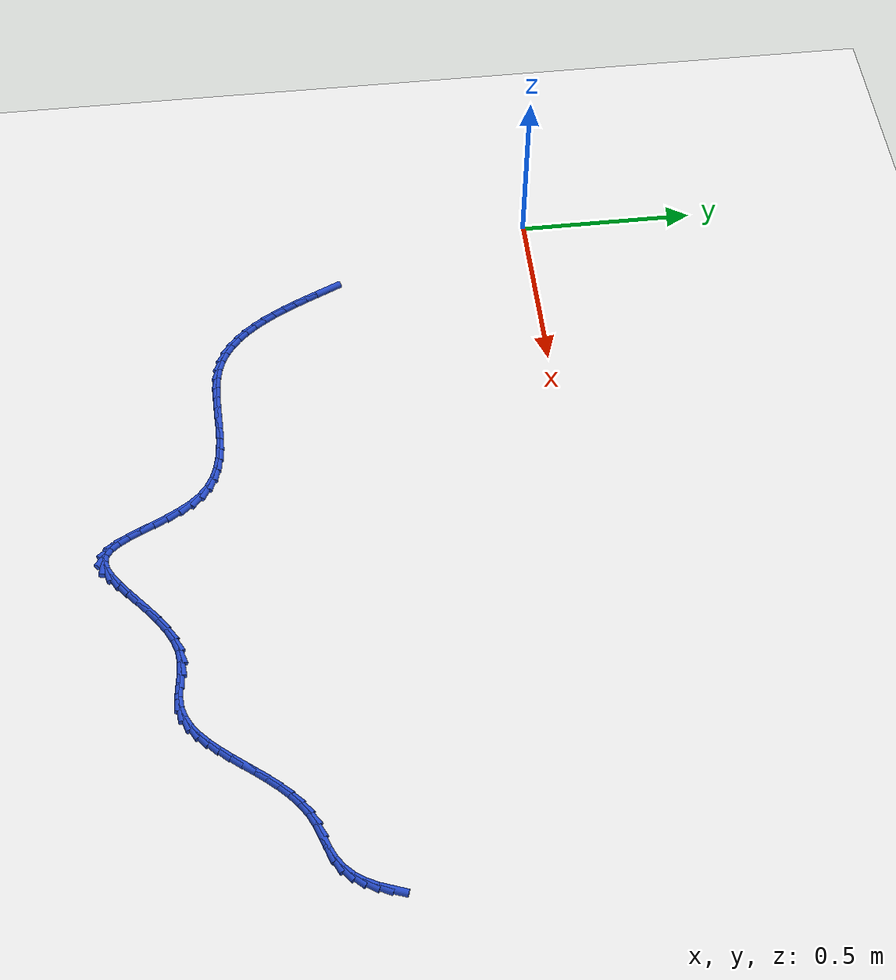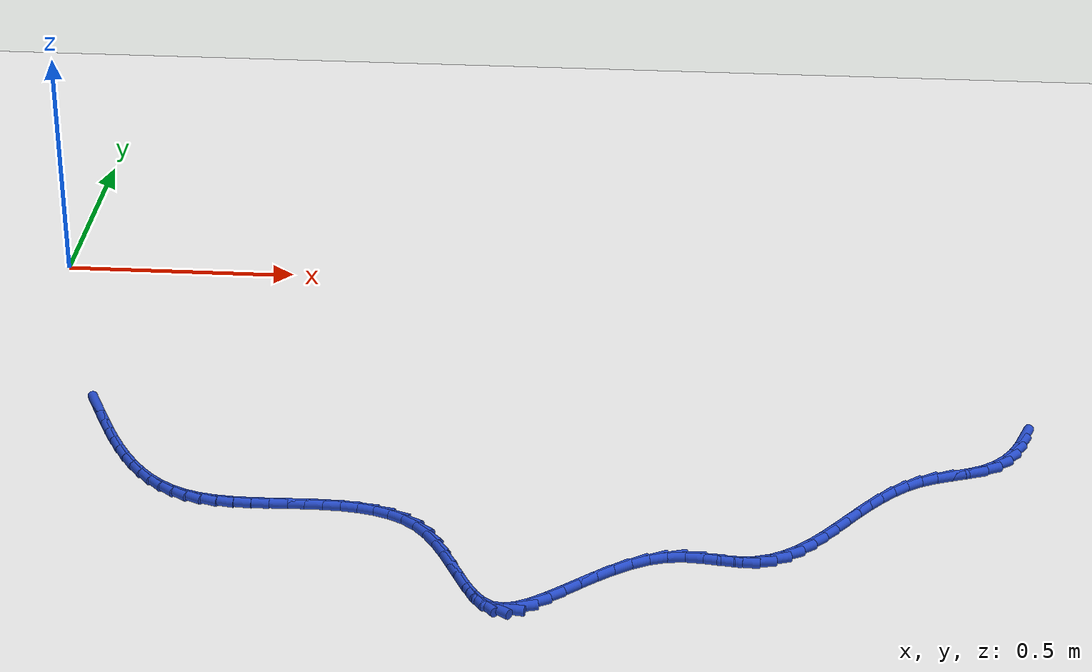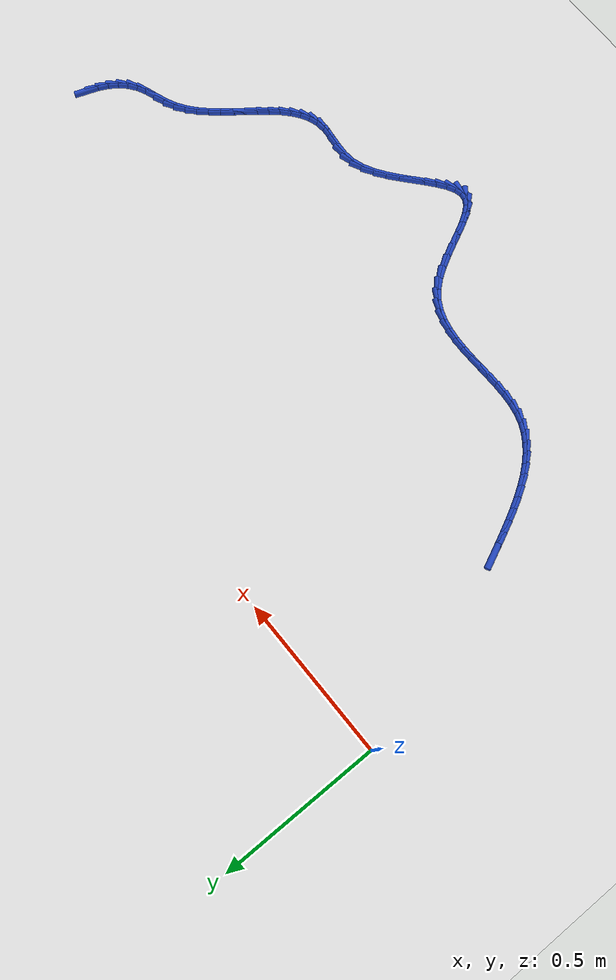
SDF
<sdf version="1.6">
 <world name="default">
  <model name="ground_plane">
   <static>1</static>
   <link name="link">
    <collision name="collision">
     <geometry><plane><normal>0 0 1</normal><size>100 100</size></plane></geometry>
     <surface><friction><ode><mu>100</mu><mu2>50</mu2></ode></friction></surface>
    </collision>
    <visual name="visual">
     <cast_shadows>0</cast_shadows>
     <geometry><plane><normal>0 0 1</normal><size>100 100</size></plane></geometry>
     <material>
      <script><uri>file://media/materials/scripts/gazebo.material</uri><name>Gazebo/WhiteGlow</name></script>
     </material>
    </visual>
   </link>
  </model>
  <model name="line">
   <link name="link_128">
    <pose>2.0509147239992362 -0.5956063682593064 0.01 0 1.57 1.2213496051684722</pose>
    <collision name="collision">
     <geometry><cylinder><radius>0.01</radius><length>0.08</length></cylinder></geometry>
    </collision>
    <visual name="visual">
     <material>
      <script><name>Gazebo/Blue</name><uri>file://media/materials/scripts/gazebo.material</uri></script>
     </material>
     <geometry><cylinder><radius>0.01</radius><length>0.08</length></cylinder></geometry>
    </visual>
   </link>
   <link name="link_129">
    <pose>2.039287420002478 -0.6275143053469038 0.01 0 1.57 1.1071101585656402</pose>
    <collision name="collision">
     <geometry><cylinder><radius>0.01</radius><length>0.08</length></cylinder></geometry>
    </collision>
    <visual name="visual">
     <material>
      <script><name>Gazebo/Blue</name><uri>file://media/materials/scripts/gazebo.material</uri></script>
     </material>
     <geometry><cylinder><radius>0.01</radius><length>0.08</length></cylinder></geometry>
    </visual>
   </link>
   <link name="link_130">
    <pose>2.0247048896172997 -0.6566765548784549 0.01 0 1.57 0.9693637119698976</pose>
    <collision name="collision">
     <geometry><cylinder><radius>0.01</radius><length>0.08</length></cylinder></geometry>
    </collision>
    <visual name="visual">
     <material>
      <script><name>Gazebo/Blue</name><uri>file://media/materials/scripts/gazebo.material</uri></script>
     </material>
     <geometry><cylinder><radius>0.01</radius><length>0.08</length></cylinder></geometry>
    </visual>
   </link>
   <link name="link_131">
    <pose>2.0069121131174397 -0.6826043997923853 0.01 0 1.57 0.8071761430681405</pose>
    <collision name="collision">
     <geometry><cylinder><radius>0.01</radius><length>0.08</length></cylinder></geometry>
    </collision>
    <visual name="visual">
     <material>
      <script><name>Gazebo/Blue</name><uri>file://media/materials/scripts/gazebo.material</uri></script>
     </material>
     <geometry><cylinder><radius>0.01</radius><length>0.08</length></cylinder></geometry>
    </visual>
   </link>
   <link name="link_132">
    <pose>1.9856540707766381 -0.7048091230271192 0.01 0 1.57 0.6242468252658273</pose>
    <collision name="collision">
     <geometry><cylinder><radius>0.01</radius><length>0.08</length></cylinder></geometry>
    </collision>
    <visual name="visual">
     <material>
      <script><name>Gazebo/Blue</name><uri>file://media/materials/scripts/gazebo.material</uri></script>
     </material>
     <geometry><cylinder><radius>0.01</radius><length>0.08</length></cylinder></geometry>
    </visual>
   </link>
   <link name="link_133">
    <pose>1.9606757428686326 -0.7228020075210821 0.01 0 1.57 0.44153290183327837</pose>
    <collision name="collision">
     <geometry><cylinder><radius>0.01</radius><length>0.08</length></cylinder></geometry>
    </collision>
    <visual name="visual">
     <material>
      <script><name>Gazebo/Blue</name><uri>file://media/materials/scripts/gazebo.material</uri></script>
     </material>
     <geometry><cylinder><radius>0.01</radius><length>0.08</length></cylinder></geometry>
    </visual>
   </link>
   <link name="link_134">
    <pose>1.9319152946823381 -0.7363957635434352 0.01 0 1.57 0.34229658206863983</pose>
    <collision name="collision">
     <geometry><cylinder><radius>0.01</radius><length>0.08</length></cylinder></geometry>
    </collision>
    <visual name="visual">
     <material>
      <script><name>Gazebo/Blue</name><uri>file://media/materials/scripts/gazebo.material</uri></script>
     </material>
     <geometry><cylinder><radius>0.01</radius><length>0.08</length></cylinder></geometry>
    </visual>
   </link>
   <link name="link_135">
    <pose>1.9006728461766473 -0.7475281645333626 0.01 0 1.57 0.34723935128601235</pose>
    <collision name="collision">
     <geometry><cylinder><radius>0.01</radius><length>0.08</length></cylinder></geometry>
    </collision>
    <visual name="visual">
     <material>
      <script><name>Gazebo/Blue</name><uri>file://media/materials/scripts/gazebo.material</uri></script>
     </material>
     <geometry><cylinder><radius>0.01</radius><length>0.08</length></cylinder></geometry>
    </visual>
   </link>
   <link name="link_136">
    <pose>1.868834118706899 -0.759050700067108 0.01 0 1.57 0.4484742781322739</pose>
    <collision name="collision">
     <geometry><cylinder><radius>0.01</radius><length>0.08</length></cylinder></geometry>
    </collision>
    <visual name="visual">
     <material>
      <script><name>Gazebo/Blue</name><uri>file://media/materials/scripts/gazebo.material</uri></script>
     </material>
     <geometry><cylinder><radius>0.01</radius><length>0.08</length></cylinder></geometry>
    </visual>
   </link>
   <link name="link_137">
    <pose>1.8382546949787013 -0.773764745498107 0.01 0 1.57 0.5907192228615437</pose>
    <collision name="collision">
     <geometry><cylinder><radius>0.01</radius><length>0.08</length></cylinder></geometry>
    </collision>
    <visual name="visual">
     <material>
      <script><name>Gazebo/Blue</name><uri>file://media/materials/scripts/gazebo.material</uri></script>
     </material>
     <geometry><cylinder><radius>0.01</radius><length>0.08</length></cylinder></geometry>
    </visual>
   </link>
   <link name="link_138">
    <pose>1.8098060360113484 -0.7928423536603981 0.01 0 1.57 0.7073531029528215</pose>
    <collision name="collision">
     <geometry><cylinder><radius>0.01</radius><length>0.08</length></cylinder></geometry>
    </collision>
    <visual name="visual">
     <material>
      <script><name>Gazebo/Blue</name><uri>file://media/materials/scripts/gazebo.material</uri></script>
     </material>
     <geometry><cylinder><radius>0.01</radius><length>0.08</length></cylinder></geometry>
    </visual>
   </link>
   <link name="link_139">
    <pose>1.7832211523646644 -0.8155707464808047 0.01 0 1.57 0.7954688515842193</pose>
    <collision name="collision">
     <geometry><cylinder><radius>0.01</radius><length>0.08</length></cylinder></geometry>
    </collision>
    <visual name="visual">
     <material>
      <script><name>Gazebo/Blue</name><uri>file://media/materials/scripts/gazebo.material</uri></script>
     </material>
     <geometry><cylinder><radius>0.01</radius><length>0.08</length></cylinder></geometry>
    </visual>
   </link>
   <link name="link_140">
    <pose>1.758169574708231 -0.8411320478925353 0.01 0 1.57 0.857757512123346</pose>
    <collision name="collision">
     <geometry><cylinder><radius>0.01</radius><length>0.08</length></cylinder></geometry>
    </collision>
    <visual name="visual">
     <material>
      <script><name>Gazebo/Blue</name><uri>file://media/materials/scripts/gazebo.material</uri></script>
     </material>
     <geometry><cylinder><radius>0.01</radius><length>0.08</length></cylinder></geometry>
    </visual>
   </link>
   <link name="link_141">
    <pose>1.7343208337116303 -0.8687083818288005 0.01 0 1.57 0.8969549499621723</pose>
    <collision name="collision">
     <geometry><cylinder><radius>0.01</radius><length>0.08</length></cylinder></geometry>
    </collision>
    <visual name="visual">
     <material>
      <script><name>Gazebo/Blue</name><uri>file://media/materials/scripts/gazebo.material</uri></script>
     </material>
     <geometry><cylinder><radius>0.01</radius><length>0.08</length></cylinder></geometry>
    </visual>
   </link>
   <link name="link_142">
    <pose>1.7113444600444427 -0.8974818722228098 0.01 0 1.57 0.9149010160023894</pose>
    <collision name="collision">
     <geometry><cylinder><radius>0.01</radius><length>0.08</length></cylinder></geometry>
    </collision>
    <visual name="visual">
     <material>
      <script><name>Gazebo/Blue</name><uri>file://media/materials/scripts/gazebo.material</uri></script>
     </material>
     <geometry><cylinder><radius>0.01</radius><length>0.08</length></cylinder></geometry>
    </visual>
   </link>
   <link name="link_143">
    <pose>1.6889099843762494 -0.9266346430077741 0.01 0 1.57 0.9121488764234678</pose>
    <collision name="collision">
     <geometry><cylinder><radius>0.01</radius><length>0.08</length></cylinder></geometry>
    </collision>
    <visual name="visual">
     <material>
      <script><name>Gazebo/Blue</name><uri>file://media/materials/scripts/gazebo.material</uri></script>
     </material>
     <geometry><cylinder><radius>0.01</radius><length>0.08</length></cylinder></geometry>
    </visual>
   </link>
   <link name="link_144">
    <pose>1.6666869373766324 -0.9553488181169018 0.01 0 1.57 0.8877627536170736</pose>
    <collision name="collision">
     <geometry><cylinder><radius>0.01</radius><length>0.08</length></cylinder></geometry>
    </collision>
    <visual name="visual">
     <material>
      <script><name>Gazebo/Blue</name><uri>file://media/materials/scripts/gazebo.material</uri></script>
     </material>
     <geometry><cylinder><radius>0.01</radius><length>0.08</length></cylinder></geometry>
    </visual>
   </link>
   <link name="link_145">
    <pose>1.6443448497151731 -0.9828065214834034 0.01 0 1.57 0.8391452167278861</pose>
    <collision name="collision">
     <geometry><cylinder><radius>0.01</radius><length>0.08</length></cylinder></geometry>
    </collision>
    <visual name="visual">
     <material>
      <script><name>Gazebo/Blue</name><uri>file://media/materials/scripts/gazebo.material</uri></script>
     </material>
     <geometry><cylinder><radius>0.01</radius><length>0.08</length></cylinder></geometry>
    </visual>
   </link>
   <link name="link_146">
    <pose>1.6215532520614533 -1.008189877040489 0.01 0 1.57 0.7619464983716655</pose>
    <collision name="collision">
     <geometry><cylinder><radius>0.01</radius><length>0.08</length></cylinder></geometry>
    </collision>
    <visual name="visual">
     <material>
      <script><name>Gazebo/Blue</name><uri>file://media/materials/scripts/gazebo.material</uri></script>
     </material>
     <geometry><cylinder><radius>0.01</radius><length>0.08</length></cylinder></geometry>
    </visual>
   </link>
   <link name="link_147">
    <pose>1.5979816750850526 -1.030681008721368 0.01 0 1.57 0.6504529651790311</pose>
    <collision name="collision">
     <geometry><cylinder><radius>0.01</radius><length>0.08</length></cylinder></geometry>
    </collision>
    <visual name="visual">
     <material>
      <script><name>Gazebo/Blue</name><uri>file://media/materials/scripts/gazebo.material</uri></script>
     </material>
     <geometry><cylinder><radius>0.01</radius><length>0.08</length></cylinder></geometry>
    </visual>
   </link>
   <link name="link_148">
    <pose>1.5732996494555525 -1.0494620404592507 0.01 0 1.57 0.4994699583114369</pose>
    <collision name="collision">
     <geometry><cylinder><radius>0.01</radius><length>0.08</length></cylinder></geometry>
    </collision>
    <visual name="visual">
     <material>
      <script><name>Gazebo/Blue</name><uri>file://media/materials/scripts/gazebo.material</uri></script>
     </material>
     <geometry><cylinder><radius>0.01</radius><length>0.08</length></cylinder></geometry>
    </visual>
   </link>
   <link name="link_149">
    <pose>1.547176705842536 -1.0637150961873463 0.01 0 1.57 0.3090855281373812</pose>
    <collision name="collision">
     <geometry><cylinder><radius>0.01</radius><length>0.08</length></cylinder></geometry>
    </collision>
    <visual name="visual">
     <material>
      <script><name>Gazebo/Blue</name><uri>file://media/materials/scripts/gazebo.material</uri></script>
     </material>
     <geometry><cylinder><radius>0.01</radius><length>0.08</length></cylinder></geometry>
    </visual>
   </link>
   <link name="link_150">
    <pose>1.5192823749155842 -1.0726222998388655 0.01 0 1.57 0.09229824915727995</pose>
    <collision name="collision">
     <geometry><cylinder><radius>0.01</radius><length>0.08</length></cylinder></geometry>
    </collision>
    <visual name="visual">
     <material>
      <script><name>Gazebo/Blue</name><uri>file://media/materials/scripts/gazebo.material</uri></script>
     </material>
     <geometry><cylinder><radius>0.01</radius><length>0.08</length></cylinder></geometry>
    </visual>
   </link>
   <link name="link_151">
    <pose>1.4892934562446636 -1.0753981113552926 0.01 0 1.57 -0.07529448193059424</pose>
    <collision name="collision">
     <geometry><cylinder><radius>0.01</radius><length>0.08</length></cylinder></geometry>
    </collision>
    <visual name="visual">
     <material>
      <script><name>Gazebo/Blue</name><uri>file://media/materials/scripts/gazebo.material</uri></script>
     </material>
     <geometry><cylinder><radius>0.01</radius><length>0.08</length></cylinder></geometry>
    </visual>
   </link>
   <link name="link_152">
    <pose>1.4572746781061958 -1.0729827078010923 0.01 0 1.57 -0.12235031118537872</pose>
    <collision name="collision">
     <geometry><cylinder><radius>0.01</radius><length>0.08</length></cylinder></geometry>
    </collision>
    <visual name="visual">
     <material>
      <script><name>Gazebo/Blue</name><uri>file://media/materials/scripts/gazebo.material</uri></script>
     </material>
     <geometry><cylinder><radius>0.01</radius><length>0.08</length></cylinder></geometry>
    </visual>
   </link>
   <link name="link_153">
    <pose>1.4238658658926575 -1.0688746098849071 0.01 0 1.57 -0.06134546467961682</pose>
    <collision name="collision">
     <geometry><cylinder><radius>0.01</radius><length>0.08</length></cylinder></geometry>
    </collision>
    <visual name="visual">
     <material>
      <script><name>Gazebo/Blue</name><uri>file://media/materials/scripts/gazebo.material</uri></script>
     </material>
     <geometry><cylinder><radius>0.01</radius><length>0.08</length></cylinder></geometry>
    </visual>
   </link>
   <link name="link_154">
    <pose>1.3897533762018308 -1.066779334334021 0.01 0 1.57 0.10511841815244506</pose>
    <collision name="collision">
     <geometry><cylinder><radius>0.01</radius><length>0.08</length></cylinder></geometry>
    </collision>
    <visual name="visual">
     <material>
      <script><name>Gazebo/Blue</name><uri>file://media/materials/scripts/gazebo.material</uri></script>
     </material>
     <geometry><cylinder><radius>0.01</radius><length>0.08</length></cylinder></geometry>
    </visual>
   </link>
   <link name="link_155">
    <pose>1.3556213687919192 -1.0703805109347646 0.01 0 1.57 0.3196470215713733</pose>
    <collision name="collision">
     <geometry><cylinder><radius>0.01</radius><length>0.08</length></cylinder></geometry>
    </collision>
    <visual name="visual">
     <material>
      <script><name>Gazebo/Blue</name><uri>file://media/materials/scripts/gazebo.material</uri></script>
     </material>
     <geometry><cylinder><radius>0.01</radius><length>0.08</length></cylinder></geometry>
    </visual>
   </link>
   <link name="link_156">
    <pose>1.3219690750975683 -1.081519343046193 0.01 0 1.57 0.4830772667680714</pose>
    <collision name="collision">
     <geometry><cylinder><radius>0.01</radius><length>0.08</length></cylinder></geometry>
    </collision>
    <visual name="visual">
     <material>
      <script><name>Gazebo/Blue</name><uri>file://media/materials/scripts/gazebo.material</uri></script>
     </material>
     <geometry><cylinder><radius>0.01</radius><length>0.08</length></cylinder></geometry>
    </visual>
   </link>
   <link name="link_157">
    <pose>1.288973475665162 -1.0988264736257336 0.01 0 1.57 0.5948729830816774</pose>
    <collision name="collision">
     <geometry><cylinder><radius>0.01</radius><length>0.08</length></cylinder></geometry>
    </collision>
    <visual name="visual">
     <material>
      <script><name>Gazebo/Blue</name><uri>file://media/materials/scripts/gazebo.material</uri></script>
     </material>
     <geometry><cylinder><radius>0.01</radius><length>0.08</length></cylinder></geometry>
    </visual>
   </link>
   <link name="link_158">
    <pose>1.256779205326443 -1.1206102878051332 0.01 0 1.57 0.666298443265611</pose>
    <collision name="collision">
     <geometry><cylinder><radius>0.01</radius><length>0.08</length></cylinder></geometry>
    </collision>
    <visual name="visual">
     <material>
      <script><name>Gazebo/Blue</name><uri>file://media/materials/scripts/gazebo.material</uri></script>
     </material>
     <geometry><cylinder><radius>0.01</radius><length>0.08</length></cylinder></geometry>
    </visual>
   </link>
   <link name="link_159">
    <pose>1.2255308989131568 -1.1451791707161358 0.01 0 1.57 0.705038318354183</pose>
    <collision name="collision">
     <geometry><cylinder><radius>0.01</radius><length>0.08</length></cylinder></geometry>
    </collision>
    <visual name="visual">
     <material>
      <script><name>Gazebo/Blue</name><uri>file://media/materials/scripts/gazebo.material</uri></script>
     </material>
     <geometry><cylinder><radius>0.01</radius><length>0.08</length></cylinder></geometry>
    </visual>
   </link>
   <link name="link_160">
    <pose>1.1953731912570462 -1.1708415074904872 0.01 0 1.57 0.7140518313704532</pose>
    <collision name="collision">
     <geometry><cylinder><radius>0.01</radius><length>0.08</length></cylinder></geometry>
    </collision>
    <visual name="visual">
     <material>
      <script><name>Gazebo/Blue</name><uri>file://media/materials/scripts/gazebo.material</uri></script>
     </material>
     <geometry><cylinder><radius>0.01</radius><length>0.08</length></cylinder></geometry>
    </visual>
   </link>
   <link name="link_161">
    <pose>1.166450717189858 -1.1959056832599317 0.01 0 1.57 0.6909170004226732</pose>
    <collision name="collision">
     <geometry><cylinder><radius>0.01</radius><length>0.08</length></cylinder></geometry>
    </collision>
    <visual name="visual">
     <material>
      <script><name>Gazebo/Blue</name><uri>file://media/materials/scripts/gazebo.material</uri></script>
     </material>
     <geometry><cylinder><radius>0.01</radius><length>0.08</length></cylinder></geometry>
    </visual>
   </link>
   <link name="link_162">
    <pose>1.1389081115433353 -1.2186800831562141 0.01 0 1.57 0.6255395333053412</pose>
    <collision name="collision">
     <geometry><cylinder><radius>0.01</radius><length>0.08</length></cylinder></geometry>
    </collision>
    <visual name="visual">
     <material>
      <script><name>Gazebo/Blue</name><uri>file://media/materials/scripts/gazebo.material</uri></script>
     </material>
     <geometry><cylinder><radius>0.01</radius><length>0.08</length></cylinder></geometry>
    </visual>
   </link>
   <link name="link_163">
    <pose>1.112890009149223 -1.2374730923110808 0.01 0 1.57 0.4942285938140803</pose>
    <collision name="collision">
     <geometry><cylinder><radius>0.01</radius><length>0.08</length></cylinder></geometry>
    </collision>
    <visual name="visual">
     <material>
      <script><name>Gazebo/Blue</name><uri>file://media/materials/scripts/gazebo.material</uri></script>
     </material>
     <geometry><cylinder><radius>0.01</radius><length>0.08</length></cylinder></geometry>
    </visual>
   </link>
   <link name="link_164">
    <pose>1.0885410448392656 -1.2505930958562756 0.01 0 1.57 0.2500501567407318</pose>
    <collision name="collision">
     <geometry><cylinder><radius>0.01</radius><length>0.08</length></cylinder></geometry>
    </collision>
    <visual name="visual">
     <material>
      <script><name>Gazebo/Blue</name><uri>file://media/materials/scripts/gazebo.material</uri></script>
     </material>
     <geometry><cylinder><radius>0.01</radius><length>0.08</length></cylinder></geometry>
    </visual>
   </link>
   <link name="link_165">
    <pose>1.066005853445207 -1.2563484789235446 0.01 0 1.57 -0.15852560461713425</pose>
    <collision name="collision">
     <geometry><cylinder><radius>0.01</radius><length>0.08</length></cylinder></geometry>
    </collision>
    <visual name="visual">
     <material>
      <script><name>Gazebo/Blue</name><uri>file://media/materials/scripts/gazebo.material</uri></script>
     </material>
     <geometry><cylinder><radius>0.01</radius><length>0.08</length></cylinder></geometry>
    </visual>
   </link>
   <link name="link_166">
    <pose>1.0454268957779127 -1.2530585821640248 0.01 0 1.57 -0.6030354609365485</pose>
    <collision name="collision">
     <geometry><cylinder><radius>0.01</radius><length>0.08</length></cylinder></geometry>
    </collision>
    <visual name="visual">
     <material>
      <script><name>Gazebo/Blue</name><uri>file://media/materials/scripts/gazebo.material</uri></script>
     </material>
     <geometry><cylinder><radius>0.01</radius><length>0.08</length></cylinder></geometry>
    </visual>
   </link>
   <link name="link_167">
    <pose>1.026721369196105 -1.2401779138535787 0.01 0 1.57 -0.8785999930274836</pose>
    <collision name="collision">
     <geometry><cylinder><radius>0.01</radius><length>0.08</length></cylinder></geometry>
    </collision>
    <visual name="visual">
     <material>
      <script><name>Gazebo/Blue</name><uri>file://media/materials/scripts/gazebo.material</uri></script>
     </material>
     <geometry><cylinder><radius>0.01</radius><length>0.08</length></cylinder></geometry>
    </visual>
   </link>
   <link name="link_168">
    <pose>1.0093879591131012 -1.219269984889086 0.01 0 1.57 -1.0243623457998199</pose>
    <collision name="collision">
     <geometry><cylinder><radius>0.01</radius><length>0.08</length></cylinder></geometry>
    </collision>
    <visual name="visual">
     <material>
      <script><name>Gazebo/Blue</name><uri>file://media/materials/scripts/gazebo.material</uri></script>
     </material>
     <geometry><cylinder><radius>0.01</radius><length>0.08</length></cylinder></geometry>
    </visual>
   </link>
   <link name="link_169">
    <pose>0.9928798141131977 -1.1921277794066185 0.01 0 1.57 -1.0961164083483421</pose>
    <collision name="collision">
     <geometry><cylinder><radius>0.01</radius><length>0.08</length></cylinder></geometry>
    </collision>
    <visual name="visual">
     <material>
      <script><name>Gazebo/Blue</name><uri>file://media/materials/scripts/gazebo.material</uri></script>
     </material>
     <geometry><cylinder><radius>0.01</radius><length>0.08</length></cylinder></geometry>
    </visual>
   </link>
   <link name="link_170">
    <pose>0.9766500827806937 -1.1605442815422506 0.01 0 1.57 -1.121689148317004</pose>
    <collision name="collision">
     <geometry><cylinder><radius>0.01</radius><length>0.08</length></cylinder></geometry>
    </collision>
    <visual name="visual">
     <material>
      <script><name>Gazebo/Blue</name><uri>file://media/materials/scripts/gazebo.material</uri></script>
     </material>
     <geometry><cylinder><radius>0.01</radius><length>0.08</length></cylinder></geometry>
    </visual>
   </link>
   <link name="link_171">
    <pose>0.960151913699886 -1.1263124754320537 0.01 0 1.57 -1.1124089930927972</pose>
    <collision name="collision">
     <geometry><cylinder><radius>0.01</radius><length>0.08</length></cylinder></geometry>
    </collision>
    <visual name="visual">
     <material>
      <script><name>Gazebo/Blue</name><uri>file://media/materials/scripts/gazebo.material</uri></script>
     </material>
     <geometry><cylinder><radius>0.01</radius><length>0.08</length></cylinder></geometry>
    </visual>
   </link>
   <link name="link_172">
    <pose>0.9428384554550728 -1.0912253452121015 0.01 0 1.57 -1.0703530946693895</pose>
    <collision name="collision">
     <geometry><cylinder><radius>0.01</radius><length>0.08</length></cylinder></geometry>
    </collision>
    <visual name="visual">
     <material>
      <script><name>Gazebo/Blue</name><uri>file://media/materials/scripts/gazebo.material</uri></script>
     </material>
     <geometry><cylinder><radius>0.01</radius><length>0.08</length></cylinder></geometry>
    </visual>
   </link>
   <link name="link_173">
    <pose>0.9241628566305513 -1.0570758750184648 0.01 0 1.57 -0.9907970548368036</pose>
    <collision name="collision">
     <geometry><cylinder><radius>0.01</radius><length>0.08</length></cylinder></geometry>
    </collision>
    <visual name="visual">
     <material>
      <script><name>Gazebo/Blue</name><uri>file://media/materials/scripts/gazebo.material</uri></script>
     </material>
     <geometry><cylinder><radius>0.01</radius><length>0.08</length></cylinder></geometry>
    </visual>
   </link>
   <link name="link_174">
    <pose>0.9035782658106195 -1.025657048987218 0.01 0 1.57 -0.8624441299946917</pose>
    <collision name="collision">
     <geometry><cylinder><radius>0.01</radius><length>0.08</length></cylinder></geometry>
    </collision>
    <visual name="visual">
     <material>
      <script><name>Gazebo/Blue</name><uri>file://media/materials/scripts/gazebo.material</uri></script>
     </material>
     <geometry><cylinder><radius>0.01</radius><length>0.08</length></cylinder></geometry>
    </visual>
   </link>
   <link name="link_175">
    <pose>0.8805378886730235 -0.9987616942820676 0.01 0 1.57 -0.6845162086990284</pose>
    <collision name="collision">
     <geometry><cylinder><radius>0.01</radius><length>0.08</length></cylinder></geometry>
    </collision>
    <visual name="visual">
     <material>
      <script><name>Gazebo/Blue</name><uri>file://media/materials/scripts/gazebo.material</uri></script>
     </material>
     <geometry><cylinder><radius>0.01</radius><length>0.08</length></cylinder></geometry>
    </visual>
   </link>
   <link name="link_176">
    <pose>0.8546845565883046 -0.9776612823784907 0.01 0 1.57 -0.5052967117705995</pose>
    <collision name="collision">
     <geometry><cylinder><radius>0.01</radius><length>0.08</length></cylinder></geometry>
    </collision>
    <visual name="visual">
     <material>
      <script><name>Gazebo/Blue</name><uri>file://media/materials/scripts/gazebo.material</uri></script>
     </material>
     <geometry><cylinder><radius>0.01</radius><length>0.08</length></cylinder></geometry>
    </visual>
   </link>
   <link name="link_177">
    <pose>0.8262732798649118 -0.9619441638268252 0.01 0 1.57 -0.34763080527466106</pose>
    <collision name="collision">
     <geometry><cylinder><radius>0.01</radius><length>0.08</length></cylinder></geometry>
    </collision>
    <visual name="visual">
     <material>
      <script><name>Gazebo/Blue</name><uri>file://media/materials/scripts/gazebo.material</uri></script>
     </material>
     <geometry><cylinder><radius>0.01</radius><length>0.08</length></cylinder></geometry>
    </visual>
   </link>
   <link name="link_178">
    <pose>0.7956823743432166 -0.9508596737227517 0.01 0 1.57 -0.21879414268149083</pose>
    <collision name="collision">
     <geometry><cylinder><radius>0.01</radius><length>0.08</length></cylinder></geometry>
    </collision>
    <visual name="visual">
     <material>
      <script><name>Gazebo/Blue</name><uri>file://media/materials/scripts/gazebo.material</uri></script>
     </material>
     <geometry><cylinder><radius>0.01</radius><length>0.08</length></cylinder></geometry>
    </visual>
   </link>
   <link name="link_179">
    <pose>0.7632901558635917 -0.9436571471619516 0.01 0 1.57 -0.11981961346340268</pose>
    <collision name="collision">
     <geometry><cylinder><radius>0.01</radius><length>0.08</length></cylinder></geometry>
    </collision>
    <visual name="visual">
     <material>
      <script><name>Gazebo/Blue</name><uri>file://media/materials/scripts/gazebo.material</uri></script>
     </material>
     <geometry><cylinder><radius>0.01</radius><length>0.08</length></cylinder></geometry>
    </visual>
   </link>
   <link name="link_180">
    <pose>0.7294749402664088 -0.9395859192401056 0.01 0 1.57 -0.04845885423983077</pose>
    <collision name="collision">
     <geometry><cylinder><radius>0.01</radius><length>0.08</length></cylinder></geometry>
    </collision>
    <visual name="visual">
     <material>
      <script><name>Gazebo/Blue</name><uri>file://media/materials/scripts/gazebo.material</uri></script>
     </material>
     <geometry><cylinder><radius>0.01</radius><length>0.08</length></cylinder></geometry>
    </visual>
   </link>
   <link name="link_181">
    <pose>0.6946150433920395 -0.9378953250528945 0.01 0 1.57 -0.0017064924397407093</pose>
    <collision name="collision">
     <geometry><cylinder><radius>0.01</radius><length>0.08</length></cylinder></geometry>
    </collision>
    <visual name="visual">
     <material>
      <script><name>Gazebo/Blue</name><uri>file://media/materials/scripts/gazebo.material</uri></script>
     </material>
     <geometry><cylinder><radius>0.01</radius><length>0.08</length></cylinder></geometry>
    </visual>
   </link>
   <link name="link_182">
    <pose>0.6590887810808543 -0.9378346996959989 0.01 0 1.57 0.022854997756573035</pose>
    <collision name="collision">
     <geometry><cylinder><radius>0.01</radius><length>0.08</length></cylinder></geometry>
    </collision>
    <visual name="visual">
     <material>
      <script><name>Gazebo/Blue</name><uri>file://media/materials/scripts/gazebo.material</uri></script>
     </material>
     <geometry><cylinder><radius>0.01</radius><length>0.08</length></cylinder></geometry>
    </visual>
   </link>
   <link name="link_183">
    <pose>0.6232744691732275 -0.9386533782651003 0.01 0 1.57 0.026511432849847645</pose>
    <collision name="collision">
     <geometry><cylinder><radius>0.01</radius><length>0.08</length></cylinder></geometry>
    </collision>
    <visual name="visual">
     <material>
      <script><name>Gazebo/Blue</name><uri>file://media/materials/scripts/gazebo.material</uri></script>
     </material>
     <geometry><cylinder><radius>0.01</radius><length>0.08</length></cylinder></geometry>
    </visual>
   </link>
   <link name="link_184">
    <pose>0.5875504235095295 -0.9396006958558788 0.01 0 1.57 0.009226441653742836</pose>
    <collision name="collision">
     <geometry><cylinder><radius>0.01</radius><length>0.08</length></cylinder></geometry>
    </collision>
    <visual name="visual">
     <material>
      <script><name>Gazebo/Blue</name><uri>file://media/materials/scripts/gazebo.material</uri></script>
     </material>
     <geometry><cylinder><radius>0.01</radius><length>0.08</length></cylinder></geometry>
    </visual>
   </link>
   <link name="link_185">
    <pose>0.5522949599301323 -0.9399259875640157 0.01 0 1.57 -0.030430671339058236</pose>
    <collision name="collision">
     <geometry><cylinder><radius>0.01</radius><length>0.08</length></cylinder></geometry>
    </collision>
    <visual name="visual">
     <material>
      <script><name>Gazebo/Blue</name><uri>file://media/materials/scripts/gazebo.material</uri></script>
     </material>
     <geometry><cylinder><radius>0.01</radius><length>0.08</length></cylinder></geometry>
    </visual>
   </link>
   <link name="link_186">
    <pose>0.5178863942754071 -0.9388785884851919 0.01 0 1.57 -0.09526335155079763</pose>
    <collision name="collision">
     <geometry><cylinder><radius>0.01</radius><length>0.08</length></cylinder></geometry>
    </collision>
    <visual name="visual">
     <material>
      <script><name>Gazebo/Blue</name><uri>file://media/materials/scripts/gazebo.material</uri></script>
     </material>
     <geometry><cylinder><radius>0.01</radius><length>0.08</length></cylinder></geometry>
    </visual>
   </link>
   <link name="link_187">
    <pose>0.48470304238572703 -0.935707833715088 0.01 0 1.57 -0.18912495845486366</pose>
    <collision name="collision">
     <geometry><cylinder><radius>0.01</radius><length>0.08</length></cylinder></geometry>
    </collision>
    <visual name="visual">
     <material>
      <script><name>Gazebo/Blue</name><uri>file://media/materials/scripts/gazebo.material</uri></script>
     </material>
     <geometry><cylinder><radius>0.01</radius><length>0.08</length></cylinder></geometry>
    </visual>
   </link>
   <link name="link_188">
    <pose>0.4531232201014634 -0.9296630583493852 0.01 0 1.57 -0.315274574090609</pose>
    <collision name="collision">
     <geometry><cylinder><radius>0.01</radius><length>0.08</length></cylinder></geometry>
    </collision>
    <visual name="visual">
     <material>
      <script><name>Gazebo/Blue</name><uri>file://media/materials/scripts/gazebo.material</uri></script>
     </material>
     <geometry><cylinder><radius>0.01</radius><length>0.08</length></cylinder></geometry>
    </visual>
   </link>
   <link name="link_189">
    <pose>0.42351844244952735 -0.9200073654197621 0.01 0 1.57 -0.4573429285612719</pose>
    <collision name="collision">
     <geometry><cylinder><radius>0.01</radius><length>0.08</length></cylinder></geometry>
    </collision>
    <visual name="visual">
     <material>
      <script><name>Gazebo/Blue</name><uri>file://media/materials/scripts/gazebo.material</uri></script>
     </material>
     <geometry><cylinder><radius>0.01</radius><length>0.08</length></cylinder></geometry>
    </visual>
   </link>
   <link name="link_190">
    <pose>0.39602635946886916 -0.906477306936486 0.01 0 1.57 -0.5898188960142222</pose>
    <collision name="collision">
     <geometry><cylinder><radius>0.01</radius><length>0.08</length></cylinder></geometry>
    </collision>
    <visual name="visual">
     <material>
      <script><name>Gazebo/Blue</name><uri>file://media/materials/scripts/gazebo.material</uri></script>
     </material>
     <geometry><cylinder><radius>0.01</radius><length>0.08</length></cylinder></geometry>
    </visual>
   </link>
   <link name="link_191">
    <pose>0.3704973843440124 -0.8893909327925484 0.01 0 1.57 -0.7073215086109534</pose>
    <collision name="collision">
     <geometry><cylinder><radius>0.01</radius><length>0.08</length></cylinder></geometry>
    </collision>
    <visual name="visual">
     <material>
      <script><name>Gazebo/Blue</name><uri>file://media/materials/scripts/gazebo.material</uri></script>
     </material>
     <geometry><cylinder><radius>0.01</radius><length>0.08</length></cylinder></geometry>
    </visual>
   </link>
   <link name="link_192">
    <pose>0.34676431347692316 -0.8691019572519934 0.01 0 1.57 -0.8082377247574635</pose>
    <collision name="collision">
     <geometry><cylinder><radius>0.01</radius><length>0.08</length></cylinder></geometry>
    </collision>
    <visual name="visual">
     <material>
      <script><name>Gazebo/Blue</name><uri>file://media/materials/scripts/gazebo.material</uri></script>
     </material>
     <geometry><cylinder><radius>0.01</radius><length>0.08</length></cylinder></geometry>
    </visual>
   </link>
   <link name="link_193">
    <pose>0.324659943269568 -0.845964094578864 0.01 0 1.57 -0.8928180686480709</pose>
    <collision name="collision">
     <geometry><cylinder><radius>0.01</radius><length>0.08</length></cylinder></geometry>
    </collision>
    <visual name="visual">
     <material>
      <script><name>Gazebo/Blue</name><uri>file://media/materials/scripts/gazebo.material</uri></script>
     </material>
     <geometry><cylinder><radius>0.01</radius><length>0.08</length></cylinder></geometry>
    </visual>
   </link>
   <link name="link_194">
    <pose>0.3040170701239137 -0.8203310590372049 0.01 0 1.57 -0.9623348700851055</pose>
    <collision name="collision">
     <geometry><cylinder><radius>0.01</radius><length>0.08</length></cylinder></geometry>
    </collision>
    <visual name="visual">
     <material>
      <script><name>Gazebo/Blue</name><uri>file://media/materials/scripts/gazebo.material</uri></script>
     </material>
     <geometry><cylinder><radius>0.01</radius><length>0.08</length></cylinder></geometry>
    </visual>
   </link>
   <link name="link_195">
    <pose>0.28466849044192655 -0.7925565648910595 0.01 0 1.57 -1.0184217190761156</pose>
    <collision name="collision">
     <geometry><cylinder><radius>0.01</radius><length>0.08</length></cylinder></geometry>
    </collision>
    <visual name="visual">
     <material>
      <script><name>Gazebo/Blue</name><uri>file://media/materials/scripts/gazebo.material</uri></script>
     </material>
     <geometry><cylinder><radius>0.01</radius><length>0.08</length></cylinder></geometry>
    </visual>
   </link>
   <link name="link_196">
    <pose>0.26644700062557414 -0.7629943264044721 0.01 0 1.57 -1.0626764287364847</pose>
    <collision name="collision">
     <geometry><cylinder><radius>0.01</radius><length>0.08</length></cylinder></geometry>
    </collision>
    <visual name="visual">
     <material>
      <script><name>Gazebo/Blue</name><uri>file://media/materials/scripts/gazebo.material</uri></script>
     </material>
     <geometry><cylinder><radius>0.01</radius><length>0.08</length></cylinder></geometry>
    </visual>
   </link>
   <link name="link_197">
    <pose>0.24918539707682263 -0.7319980578414865 0.01 0 1.57 -1.0964664763973253</pose>
    <collision name="collision">
     <geometry><cylinder><radius>0.01</radius><length>0.08</length></cylinder></geometry>
    </collision>
    <visual name="visual">
     <material>
      <script><name>Gazebo/Blue</name><uri>file://media/materials/scripts/gazebo.material</uri></script>
     </material>
     <geometry><cylinder><radius>0.01</radius><length>0.08</length></cylinder></geometry>
    </visual>
   </link>
   <link name="link_198">
    <pose>0.2327164761976389 -0.6999214734661469 0.01 0 1.57 -1.120853260155503</pose>
    <collision name="collision">
     <geometry><cylinder><radius>0.01</radius><length>0.08</length></cylinder></geometry>
    </collision>
    <visual name="visual">
     <material>
      <script><name>Gazebo/Blue</name><uri>file://media/materials/scripts/gazebo.material</uri></script>
     </material>
     <geometry><cylinder><radius>0.01</radius><length>0.08</length></cylinder></geometry>
    </visual>
   </link>
   <link name="link_199">
    <pose>0.2168730343899892 -0.6671182875424959 0.01 0 1.57 -1.1365728099277066</pose>
    <collision name="collision">
     <geometry><cylinder><radius>0.01</radius><length>0.08</length></cylinder></geometry>
    </collision>
    <visual name="visual">
     <material>
      <script><name>Gazebo/Blue</name><uri>file://media/materials/scripts/gazebo.material</uri></script>
     </material>
     <geometry><cylinder><radius>0.01</radius><length>0.08</length></cylinder></geometry>
    </visual>
   </link>
   <link name="link_200">
    <pose>0.20148786805584099 -0.6339422143345794 0.01 0 1.57 -1.144035366854797</pose>
    <collision name="collision">
     <geometry><cylinder><radius>0.01</radius><length>0.08</length></cylinder></geometry>
    </collision>
    <visual name="visual">
     <material>
      <script><name>Gazebo/Blue</name><uri>file://media/materials/scripts/gazebo.material</uri></script>
     </material>
     <geometry><cylinder><radius>0.01</radius><length>0.08</length></cylinder></geometry>
    </visual>
   </link>
   <link name="link_201">
    <pose>0.18639377359716056 -0.6007469681064403 0.01 0 1.57 -1.1433232067739456</pose>
    <collision name="collision">
     <geometry><cylinder><radius>0.01</radius><length>0.08</length></cylinder></geometry>
    </collision>
    <visual name="visual">
     <material>
      <script><name>Gazebo/Blue</name><uri>file://media/materials/scripts/gazebo.material</uri></script>
     </material>
     <geometry><cylinder><radius>0.01</radius><length>0.08</length></cylinder></geometry>
    </visual>
   </link>
  </model>
 </world>
</sdf>
